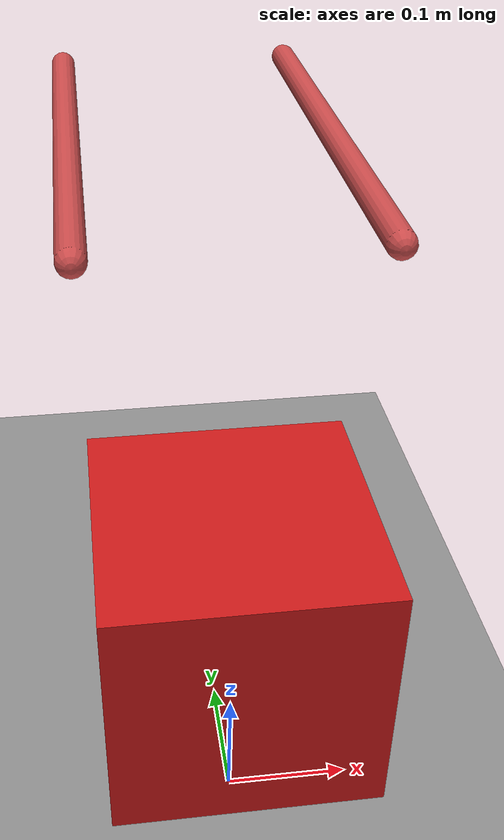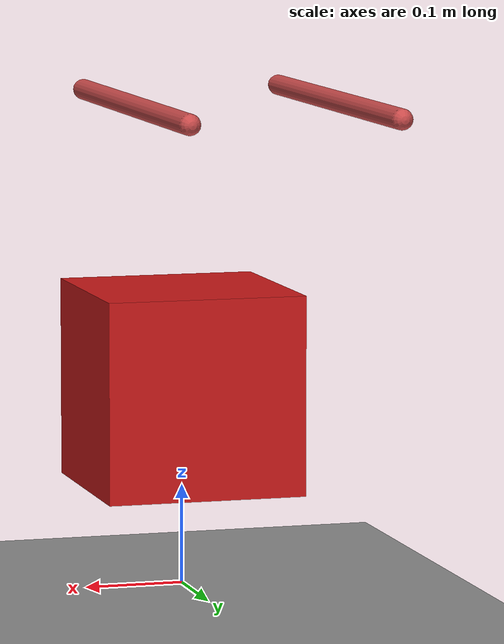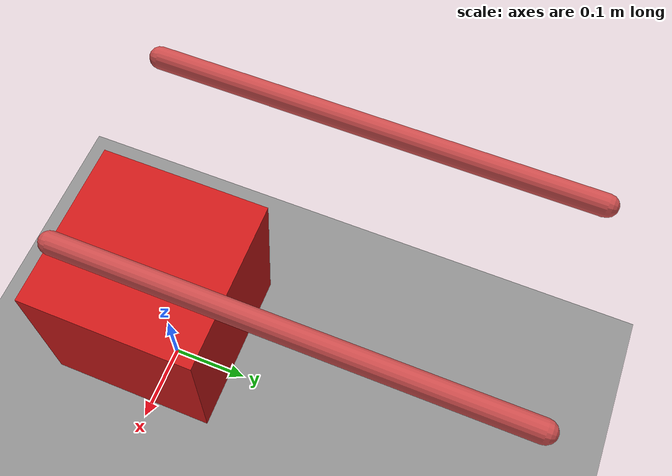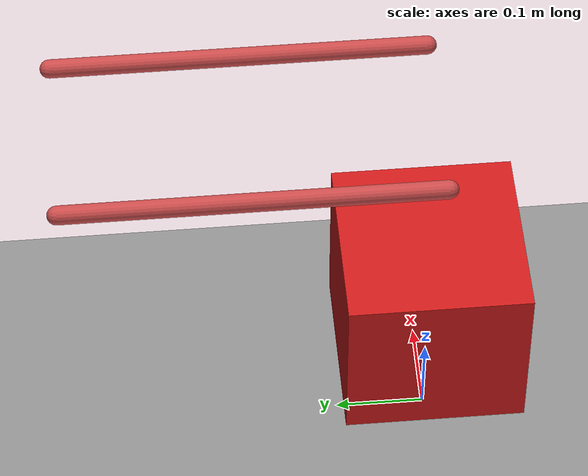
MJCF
<mujoco>
    <!-- Global physics settings to improve collision handling -->
    <option timestep="0.002" iterations="20" solver="Newton" tolerance="1e-10"/>

    <!-- Global contact parameters to prevent interpenetration -->
    <contact>
        <pair geom1="cube_geom" geom2="left_stick_geom" solref="0.01 1" solimp="0.9 0.95 0.001" margin="0.005"/>
        <pair geom1="cube_geom" geom2="right_stick_geom" solref="0.01 1" solimp="0.9 0.95 0.001" margin="0.005"/>
    </contact>

    <include file="chopsticks.xml"/>
    <include file="hard_cube.xml"/>
</mujoco>

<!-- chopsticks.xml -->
<mujoco model="chopstick_softcube">
  <compiler angle="degree" coordinate="local"/>
  <option timestep="0.001" integrator="RK4"/>

  <asset>
    <!-- 1) Checkered floor texture -->
    <texture
        name="floor_tex"
        type="2d"
        builtin="checker"
        rgb1="0.8 0.8 0.8"
        rgb2="0.3 0.3 0.3"
        width="512"
        height="512"/>
    <material
        name="floor_mat"
        texture="floor_tex"
        texrepeat="20 20"
        texuniform="true"
        reflectance="0.1"/>

    <!-- 2) Skybox gradient background -->
    <texture
        name="skybox_tex"
        type="skybox"
        builtin="gradient"
        rgb1="1 1 1"
        rgb2="0.8 0.9 1"
        width="256"
        height="1536"/>

    <material name="stick_mat" rgba="0.8 0.3 0.3 1"/>
  </asset>

  <default>
    <!-- Give every geom nonzero mass; base friction -->
    <geom density="5"
          friction="0.5 0.1 0.1"/>
  </default>

  <worldbody>
    <geom
        name="floor"
        type="plane"
        size="3 3 0.1"
        material="floor_mat"/>

    <!-- Left chopstick -->
    <body name="left_stick" pos="-0.1 0 0.5" gravcomp="1">
      <joint name="left_slide"  type="slide" axis="1 0 0" range="-0.05 0.05"/>
      <joint name="left_lift"  type="slide" axis="0 0 1" range="-0.5 0.5"/>
      <geom name="left_stick_geom" type="capsule" fromto="0 0 0 0 0.4 0" size="0.01" material="stick_mat"
            solref="0.01 1" solimp="0.9 0.95 0.001" margin="0.005" priority="1"/>
    </body>

    <!-- Right chopstick -->
    <body name="right_stick" pos="0.1 0 0.5" gravcomp="1">
      <joint name="right_slide" type="slide" axis="1 0 0" range="-0.05 0.05"/>
      <joint name="right_lift" type="slide" axis="0 0 1" range="-0.5 0.5"/>
      <geom name="right_stick_geom" type="capsule" fromto="0 0 0 0 0.4 0" size="0.01" material="stick_mat"
            solref="0.01 1" solimp="0.9 0.95 0.001" margin="0.005" priority="1"/>
    </body>

  </worldbody>

  <actuator>
    <motor joint="left_slide"  ctrlrange="-1 1" gear="10"/>
    <motor joint="right_slide" ctrlrange="-1 1" gear="10"/>
    <motor joint="left_lift"  ctrlrange="-1 1" gear="10"/>
    <motor joint="right_lift" ctrlrange="-1 1" gear="10"/>
  </actuator>
</mujoco>

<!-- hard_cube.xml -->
<mujoco model="cube_model">
    <compiler angle="degree"/>
    <option integrator="RK4"/>

    <default>
        <!-- enable collision and contact processing on all geoms by default -->
        <geom condim="3" contype="1" conaffinity="1"/>
    </default>

    <worldbody>
        <!-- Free cube body -->
        <body name="cube" pos="0 0 0.2">
            <!-- 6-DOF joint to let it fall & tumble -->
            <freejoint/>

            <!-- box geom: half-sizes (0.1,0.1,0.1) → full cube of side 0.2 m -->
            <geom name="cube_geom" type="box" size="0.1 0.1 0.1"
                  rgba="0.8 0.1 0.1 1"
                  density="10"
                  friction="1 0.5 0.1"
                  solref="0.01 1"
                  solimp="0.9 0.95 0.001"
                  margin="0.005"/>
        </body>
    </worldbody>

    <!-- no actuators in this simple model -->
    <actuator/>
</mujoco>
